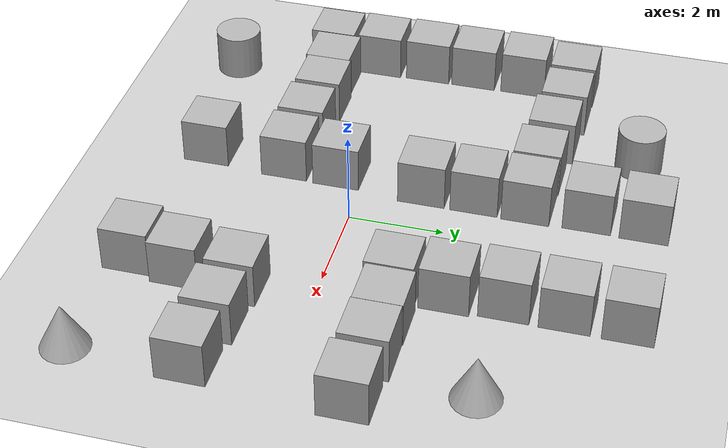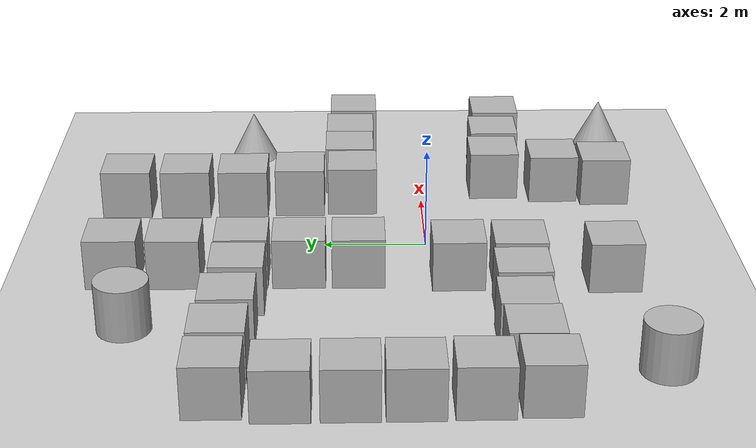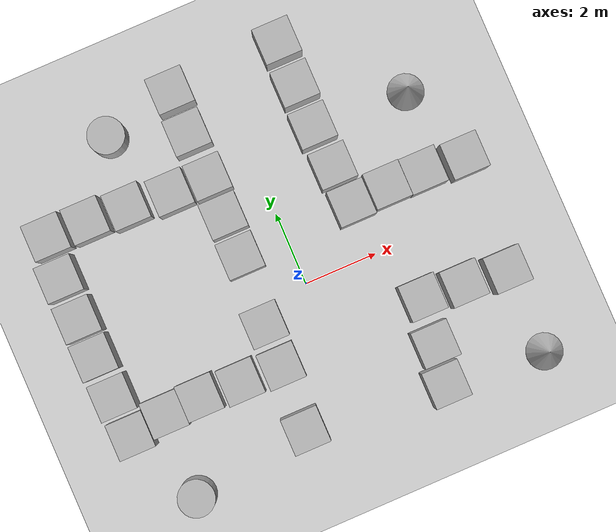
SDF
<sdf version='1.10'>
  <world name='empty'>
    <physics name='1ms' type='ignored'>
      <max_step_size>0.001</max_step_size>
      <real_time_factor>1</real_time_factor>
      <real_time_update_rate>1000</real_time_update_rate>
    </physics>
    <plugin name='gz::sim::systems::Physics' filename='gz-sim-physics-system'/>
    <plugin name='gz::sim::systems::UserCommands' filename='gz-sim-user-commands-system'/>
    <plugin name='gz::sim::systems::SceneBroadcaster' filename='gz-sim-scene-broadcaster-system'/>
    <plugin name='gz::sim::systems::Contact' filename='gz-sim-contact-system'/>
    <gravity>0 0 -9.8000000000000007</gravity>
    <magnetic_field>5.5644999999999998e-06 2.2875799999999999e-05 -4.2388400000000002e-05</magnetic_field>
    <atmosphere type='adiabatic'/>
    <scene>
      <ambient>0.400000006 0.400000006 0.400000006 1</ambient>
      <background>0.699999988 0.699999988 0.699999988 1</background>
      <shadows>true</shadows>
    </scene>
    <model name='ground_plane'>
      <static>true</static>
      <link name='link'>
        <collision name='collision'>
          <geometry>
            <plane>
              <normal>0 0 1</normal>
              <size>100 100</size>
            </plane>
          </geometry>
          <surface>
            <friction>
              <ode/>
            </friction>
            <bounce/>
            <contact/>
          </surface>
        </collision>
        <visual name='visual'>
          <geometry>
            <plane>
              <normal>0 0 1</normal>
              <size>100 100</size>
            </plane>
          </geometry>
          <material>
            <ambient>0.800000012 0.800000012 0.800000012 1</ambient>
            <diffuse>0.800000012 0.800000012 0.800000012 1</diffuse>
            <specular>0.800000012 0.800000012 0.800000012 1</specular>
          </material>
        </visual>
        <pose>0 0 0 0 0 0</pose>
        <inertial>
          <pose>0 0 0 0 0 0</pose>
          <mass>1</mass>
          <inertia>
            <ixx>1</ixx>
            <ixy>0</ixy>
            <ixz>0</ixz>
            <iyy>1</iyy>
            <iyz>0</iyz>
            <izz>1</izz>
          </inertia>
        </inertial>
        <enable_wind>false</enable_wind>
      </link>
      <pose>0 0 0 0 0 0</pose>
      <self_collide>false</self_collide>
    </model>
    <model name='box'>
      <pose>1.8976033940822885 1.4441782919231163 0.49999999990199806 -3.9555274568934306e-22 1.4276356016581111e-21 3.0034508632631953e-22</pose>
      <link name='box_link'>
        <inertial>
          <inertia>
            <ixx>0.16666</ixx>
            <ixy>0</ixy>
            <ixz>0</ixz>
            <iyy>0.16666</iyy>
            <iyz>0</iyz>
            <izz>0.16666</izz>
          </inertia>
          <mass>1</mass>
          <pose>0 0 0 0 0 0</pose>
        </inertial>
        <collision name='box_collision'>
          <geometry>
            <box>
              <size>1 1 1</size>
            </box>
          </geometry>
          <surface>
            <friction>
              <ode/>
            </friction>
            <bounce/>
            <contact/>
          </surface>
        </collision>
        <visual name='box_visual'>
          <geometry>
            <box>
              <size>1 1 1</size>
            </box>
          </geometry>
          <material>
            <ambient>0.300000012 0.300000012 0.300000012 1</ambient>
            <diffuse>0.699999988 0.699999988 0.699999988 1</diffuse>
            <specular>1 1 1 1</specular>
          </material>
        </visual>
        <pose>0 0 0 0 0 0</pose>
        <enable_wind>false</enable_wind>
      </link>
      <static>false</static>
      <self_collide>false</self_collide>
    </model>
    <model name='box_0'>
      <pose>2.9330656087198355 1.4966173517440593 0.49999999990199806 6.2287739151293738e-22 9.3279666454713669e-22 -3.6315533669320137e-22</pose>
      <link name='box_link'>
        <inertial>
          <inertia>
            <ixx>0.16666</ixx>
            <ixy>0</ixy>
            <ixz>0</ixz>
            <iyy>0.16666</iyy>
            <iyz>0</iyz>
            <izz>0.16666</izz>
          </inertia>
          <mass>1</mass>
          <pose>0 0 0 0 0 0</pose>
        </inertial>
        <collision name='box_collision'>
          <geometry>
            <box>
              <size>1 1 1</size>
            </box>
          </geometry>
          <surface>
            <friction>
              <ode/>
            </friction>
            <bounce/>
            <contact/>
          </surface>
        </collision>
        <visual name='box_visual'>
          <geometry>
            <box>
              <size>1 1 1</size>
            </box>
          </geometry>
          <material>
            <ambient>0.300000012 0.300000012 0.300000012 1</ambient>
            <diffuse>0.699999988 0.699999988 0.699999988 1</diffuse>
            <specular>1 1 1 1</specular>
          </material>
        </visual>
        <pose>0 0 0 0 0 0</pose>
        <enable_wind>false</enable_wind>
      </link>
      <static>false</static>
      <self_collide>false</self_collide>
    </model>
    <model name='box_1'>
      <pose>3.9338361708729912 1.4798363411599209 0.49999999990199806 2.0389204011590201e-22 -8.6554125143311113e-22 1.5510299731322384e-22</pose>
      <link name='box_link'>
        <inertial>
          <inertia>
            <ixx>0.16666</ixx>
            <ixy>0</ixy>
            <ixz>0</ixz>
            <iyy>0.16666</iyy>
            <iyz>0</iyz>
            <izz>0.16666</izz>
          </inertia>
          <mass>1</mass>
          <pose>0 0 0 0 0 0</pose>
        </inertial>
        <collision name='box_collision'>
          <geometry>
            <box>
              <size>1 1 1</size>
            </box>
          </geometry>
          <surface>
            <friction>
              <ode/>
            </friction>
            <bounce/>
            <contact/>
          </surface>
        </collision>
        <visual name='box_visual'>
          <geometry>
            <box>
              <size>1 1 1</size>
            </box>
          </geometry>
          <material>
            <ambient>0.300000012 0.300000012 0.300000012 1</ambient>
            <diffuse>0.699999988 0.699999988 0.699999988 1</diffuse>
            <specular>1 1 1 1</specular>
          </material>
        </visual>
        <pose>0 0 0 0 0 0</pose>
        <enable_wind>false</enable_wind>
      </link>
      <static>false</static>
      <self_collide>false</self_collide>
    </model>
    <model name='box_2'>
      <pose>5.0722942099601456 1.4044145805904746 0.49999999990199806 6.2287739151293738e-22 9.3279666454713669e-22 -3.6315533669320137e-22</pose>
      <link name='box_link'>
        <inertial>
          <inertia>
            <ixx>0.16666</ixx>
            <ixy>0</ixy>
            <ixz>0</ixz>
            <iyy>0.16666</iyy>
            <iyz>0</iyz>
            <izz>0.16666</izz>
          </inertia>
          <mass>1</mass>
          <pose>0 0 0 0 0 0</pose>
        </inertial>
        <collision name='box_collision'>
          <geometry>
            <box>
              <size>1 1 1</size>
            </box>
          </geometry>
          <surface>
            <friction>
              <ode/>
            </friction>
            <bounce/>
            <contact/>
          </surface>
        </collision>
        <visual name='box_visual'>
          <geometry>
            <box>
              <size>1 1 1</size>
            </box>
          </geometry>
          <material>
            <ambient>0.300000012 0.300000012 0.300000012 1</ambient>
            <diffuse>0.699999988 0.699999988 0.699999988 1</diffuse>
            <specular>1 1 1 1</specular>
          </material>
        </visual>
        <pose>0 0 0 0 0 0</pose>
        <enable_wind>false</enable_wind>
      </link>
      <static>false</static>
      <self_collide>false</self_collide>
    </model>
    <model name='box_3'>
      <pose>1.8371486937356341 2.5219128706078142 0.49999999990199806 -3.9555274568934306e-22 1.4276356016581111e-21 3.0034508632631953e-22</pose>
      <link name='box_link'>
        <inertial>
          <inertia>
            <ixx>0.16666</ixx>
            <ixy>0</ixy>
            <ixz>0</ixz>
            <iyy>0.16666</iyy>
            <iyz>0</iyz>
            <izz>0.16666</izz>
          </inertia>
          <mass>1</mass>
          <pose>0 0 0 0 0 0</pose>
        </inertial>
        <collision name='box_collision'>
          <geometry>
            <box>
              <size>1 1 1</size>
            </box>
          </geometry>
          <surface>
            <friction>
              <ode/>
            </friction>
            <bounce/>
            <contact/>
          </surface>
        </collision>
        <visual name='box_visual'>
          <geometry>
            <box>
              <size>1 1 1</size>
            </box>
          </geometry>
          <material>
            <ambient>0.300000012 0.300000012 0.300000012 1</ambient>
            <diffuse>0.699999988 0.699999988 0.699999988 1</diffuse>
            <specular>1 1 1 1</specular>
          </material>
        </visual>
        <pose>0 0 0 0 0 0</pose>
        <enable_wind>false</enable_wind>
      </link>
      <static>false</static>
      <self_collide>false</self_collide>
    </model>
    <model name='box_4'>
      <pose>1.7736586005860404 3.6828100143393216 0.49999999990199806 -3.9555274568934306e-22 1.4276356016581111e-21 3.0034508632631953e-22</pose>
      <link name='box_link'>
        <inertial>
          <inertia>
            <ixx>0.16666</ixx>
            <ixy>0</ixy>
            <ixz>0</ixz>
            <iyy>0.16666</iyy>
            <iyz>0</iyz>
            <izz>0.16666</izz>
          </inertia>
          <mass>1</mass>
          <pose>0 0 0 0 0 0</pose>
        </inertial>
        <collision name='box_collision'>
          <geometry>
            <box>
              <size>1 1 1</size>
            </box>
          </geometry>
          <surface>
            <friction>
              <ode/>
            </friction>
            <bounce/>
            <contact/>
          </surface>
        </collision>
        <visual name='box_visual'>
          <geometry>
            <box>
              <size>1 1 1</size>
            </box>
          </geometry>
          <material>
            <ambient>0.300000012 0.300000012 0.300000012 1</ambient>
            <diffuse>0.699999988 0.699999988 0.699999988 1</diffuse>
            <specular>1 1 1 1</specular>
          </material>
        </visual>
        <pose>0 0 0 0 0 0</pose>
        <enable_wind>false</enable_wind>
      </link>
      <static>false</static>
      <self_collide>false</self_collide>
    </model>
    <model name='box_5'>
      <pose>1.7869543388882849 4.8594936091728398 0.49999999990199806 -3.9555274568934306e-22 1.4276356016581111e-21 3.0034508632631953e-22</pose>
      <link name='box_link'>
        <inertial>
          <inertia>
            <ixx>0.16666</ixx>
            <ixy>0</ixy>
            <ixz>0</ixz>
            <iyy>0.16666</iyy>
            <iyz>0</iyz>
            <izz>0.16666</izz>
          </inertia>
          <mass>1</mass>
          <pose>0 0 0 0 0 0</pose>
        </inertial>
        <collision name='box_collision'>
          <geometry>
            <box>
              <size>1 1 1</size>
            </box>
          </geometry>
          <surface>
            <friction>
              <ode/>
            </friction>
            <bounce/>
            <contact/>
          </surface>
        </collision>
        <visual name='box_visual'>
          <geometry>
            <box>
              <size>1 1 1</size>
            </box>
          </geometry>
          <material>
            <ambient>0.300000012 0.300000012 0.300000012 1</ambient>
            <diffuse>0.699999988 0.699999988 0.699999988 1</diffuse>
            <specular>1 1 1 1</specular>
          </material>
        </visual>
        <pose>0 0 0 0 0 0</pose>
        <enable_wind>false</enable_wind>
      </link>
      <static>false</static>
      <self_collide>false</self_collide>
    </model>
    <model name='box_6'>
      <pose>1.7989180642490408 6.069131966669465 0.49999999990199806 6.2287739151293738e-22 9.3279666454713669e-22 -3.6315533669320137e-22</pose>
      <link name='box_link'>
        <inertial>
          <inertia>
            <ixx>0.16666</ixx>
            <ixy>0</ixy>
            <ixz>0</ixz>
            <iyy>0.16666</iyy>
            <iyz>0</iyz>
            <izz>0.16666</izz>
          </inertia>
          <mass>1</mass>
          <pose>0 0 0 0 0 0</pose>
        </inertial>
        <collision name='box_collision'>
          <geometry>
            <box>
              <size>1 1 1</size>
            </box>
          </geometry>
          <surface>
            <friction>
              <ode/>
            </friction>
            <bounce/>
            <contact/>
          </surface>
        </collision>
        <visual name='box_visual'>
          <geometry>
            <box>
              <size>1 1 1</size>
            </box>
          </geometry>
          <material>
            <ambient>0.300000012 0.300000012 0.300000012 1</ambient>
            <diffuse>0.699999988 0.699999988 0.699999988 1</diffuse>
            <specular>1 1 1 1</specular>
          </material>
        </visual>
        <pose>0 0 0 0 0 0</pose>
        <enable_wind>false</enable_wind>
      </link>
      <static>false</static>
      <self_collide>false</self_collide>
    </model>
    <model name='box_7'>
      <pose>-1.2536535784073894 5.9838267235420783 0.49999999990199806 6.2287739151293738e-22 9.3279666454713669e-22 -3.6315533669320137e-22</pose>
      <link name='box_link'>
        <inertial>
          <inertia>
            <ixx>0.16666</ixx>
            <ixy>0</ixy>
            <ixz>0</ixz>
            <iyy>0.16666</iyy>
            <iyz>0</iyz>
            <izz>0.16666</izz>
          </inertia>
          <mass>1</mass>
          <pose>0 0 0 0 0 0</pose>
        </inertial>
        <collision name='box_collision'>
          <geometry>
            <box>
              <size>1 1 1</size>
            </box>
          </geometry>
          <surface>
            <friction>
              <ode/>
            </friction>
            <bounce/>
            <contact/>
          </surface>
        </collision>
        <visual name='box_visual'>
          <geometry>
            <box>
              <size>1 1 1</size>
            </box>
          </geometry>
          <material>
            <ambient>0.300000012 0.300000012 0.300000012 1</ambient>
            <diffuse>0.699999988 0.699999988 0.699999988 1</diffuse>
            <specular>1 1 1 1</specular>
          </material>
        </visual>
        <pose>0 0 0 0 0 0</pose>
        <enable_wind>false</enable_wind>
      </link>
      <static>false</static>
      <self_collide>false</self_collide>
    </model>
    <model name='box_8'>
      <pose>-1.2794380329878723 4.8108748257504743 0.49999999990199806 6.2287739151293738e-22 9.3279666454713669e-22 -3.6315533669320137e-22</pose>
      <link name='box_link'>
        <inertial>
          <inertia>
            <ixx>0.16666</ixx>
            <ixy>0</ixy>
            <ixz>0</ixz>
            <iyy>0.16666</iyy>
            <iyz>0</iyz>
            <izz>0.16666</izz>
          </inertia>
          <mass>1</mass>
          <pose>0 0 0 0 0 0</pose>
        </inertial>
        <collision name='box_collision'>
          <geometry>
            <box>
              <size>1 1 1</size>
            </box>
          </geometry>
          <surface>
            <friction>
              <ode/>
            </friction>
            <bounce/>
            <contact/>
          </surface>
        </collision>
        <visual name='box_visual'>
          <geometry>
            <box>
              <size>1 1 1</size>
            </box>
          </geometry>
          <material>
            <ambient>0.300000012 0.300000012 0.300000012 1</ambient>
            <diffuse>0.699999988 0.699999988 0.699999988 1</diffuse>
            <specular>1 1 1 1</specular>
          </material>
        </visual>
        <pose>0 0 0 0 0 0</pose>
        <enable_wind>false</enable_wind>
      </link>
      <static>false</static>
      <self_collide>false</self_collide>
    </model>
    <model name='box_9'>
      <pose>-1.2461336649249413 3.5442652258018863 0.49999999990199806 2.5448413974852911e-21 9.9777089524688389e-23 -8.7974751158573218e-23</pose>
      <link name='box_link'>
        <inertial>
          <inertia>
            <ixx>0.16666</ixx>
            <ixy>0</ixy>
            <ixz>0</ixz>
            <iyy>0.16666</iyy>
            <iyz>0</iyz>
            <izz>0.16666</izz>
          </inertia>
          <mass>1</mass>
          <pose>0 0 0 0 0 0</pose>
        </inertial>
        <collision name='box_collision'>
          <geometry>
            <box>
              <size>1 1 1</size>
            </box>
          </geometry>
          <surface>
            <friction>
              <ode/>
            </friction>
            <bounce/>
            <contact/>
          </surface>
        </collision>
        <visual name='box_visual'>
          <geometry>
            <box>
              <size>1 1 1</size>
            </box>
          </geometry>
          <material>
            <ambient>0.300000012 0.300000012 0.300000012 1</ambient>
            <diffuse>0.699999988 0.699999988 0.699999988 1</diffuse>
            <specular>1 1 1 1</specular>
          </material>
        </visual>
        <pose>0 0 0 0 0 0</pose>
        <enable_wind>false</enable_wind>
      </link>
      <static>false</static>
      <self_collide>false</self_collide>
    </model>
    <model name='box_10'>
      <pose>-1.2741144112186853 2.4601389477946829 0.49999999990199806 6.2287739151293738e-22 9.3279666454713669e-22 -3.6315533669320137e-22</pose>
      <link name='box_link'>
        <inertial>
          <inertia>
            <ixx>0.16666</ixx>
            <ixy>0</ixy>
            <ixz>0</ixz>
            <iyy>0.16666</iyy>
            <iyz>0</iyz>
            <izz>0.16666</izz>
          </inertia>
          <mass>1</mass>
          <pose>0 0 0 0 0 0</pose>
        </inertial>
        <collision name='box_collision'>
          <geometry>
            <box>
              <size>1 1 1</size>
            </box>
          </geometry>
          <surface>
            <friction>
              <ode/>
            </friction>
            <bounce/>
            <contact/>
          </surface>
        </collision>
        <visual name='box_visual'>
          <geometry>
            <box>
              <size>1 1 1</size>
            </box>
          </geometry>
          <material>
            <ambient>0.300000012 0.300000012 0.300000012 1</ambient>
            <diffuse>0.699999988 0.699999988 0.699999988 1</diffuse>
            <specular>1 1 1 1</specular>
          </material>
        </visual>
        <pose>0 0 0 0 0 0</pose>
        <enable_wind>false</enable_wind>
      </link>
      <static>false</static>
      <self_collide>false</self_collide>
    </model>
    <model name='box_11'>
      <pose>-1.2818536223010142 1.3389198062367247 0.49999999990199806 6.2287739151293738e-22 9.3279666454713669e-22 -3.6315533669320137e-22</pose>
      <link name='box_link'>
        <inertial>
          <inertia>
            <ixx>0.16666</ixx>
            <ixy>0</ixy>
            <ixz>0</ixz>
            <iyy>0.16666</iyy>
            <iyz>0</iyz>
            <izz>0.16666</izz>
          </inertia>
          <mass>1</mass>
          <pose>0 0 0 0 0 0</pose>
        </inertial>
        <collision name='box_collision'>
          <geometry>
            <box>
              <size>1 1 1</size>
            </box>
          </geometry>
          <surface>
            <friction>
              <ode/>
            </friction>
            <bounce/>
            <contact/>
          </surface>
        </collision>
        <visual name='box_visual'>
          <geometry>
            <box>
              <size>1 1 1</size>
            </box>
          </geometry>
          <material>
            <ambient>0.300000012 0.300000012 0.300000012 1</ambient>
            <diffuse>0.699999988 0.699999988 0.699999988 1</diffuse>
            <specular>1 1 1 1</specular>
          </material>
        </visual>
        <pose>0 0 0 0 0 0</pose>
        <enable_wind>false</enable_wind>
      </link>
      <static>false</static>
      <self_collide>false</self_collide>
    </model>
    <model name='box_12'>
      <pose>-1.4182247176559106 -0.54341574817418281 0.49999999990199806 6.2287739151293738e-22 9.3279666454713669e-22 -3.6315533669320137e-22</pose>
      <link name='box_link'>
        <inertial>
          <inertia>
            <ixx>0.16666</ixx>
            <ixy>0</ixy>
            <ixz>0</ixz>
            <iyy>0.16666</iyy>
            <iyz>0</iyz>
            <izz>0.16666</izz>
          </inertia>
          <mass>1</mass>
          <pose>0 0 0 0 0 0</pose>
        </inertial>
        <collision name='box_collision'>
          <geometry>
            <box>
              <size>1 1 1</size>
            </box>
          </geometry>
          <surface>
            <friction>
              <ode/>
            </friction>
            <bounce/>
            <contact/>
          </surface>
        </collision>
        <visual name='box_visual'>
          <geometry>
            <box>
              <size>1 1 1</size>
            </box>
          </geometry>
          <material>
            <ambient>0.300000012 0.300000012 0.300000012 1</ambient>
            <diffuse>0.699999988 0.699999988 0.699999988 1</diffuse>
            <specular>1 1 1 1</specular>
          </material>
        </visual>
        <pose>0 0 0 0 0 0</pose>
        <enable_wind>false</enable_wind>
      </link>
      <static>false</static>
      <self_collide>false</self_collide>
    </model>
    <model name='box_13'>
      <pose>-1.4434196926364309 -1.6938511866096397 0.49999999990199806 6.2287739151293738e-22 9.3279666454713669e-22 -3.6315533669320137e-22</pose>
      <link name='box_link'>
        <inertial>
          <inertia>
            <ixx>0.16666</ixx>
            <ixy>0</ixy>
            <ixz>0</ixz>
            <iyy>0.16666</iyy>
            <iyz>0</iyz>
            <izz>0.16666</izz>
          </inertia>
          <mass>1</mass>
          <pose>0 0 0 0 0 0</pose>
        </inertial>
        <collision name='box_collision'>
          <geometry>
            <box>
              <size>1 1 1</size>
            </box>
          </geometry>
          <surface>
            <friction>
              <ode/>
            </friction>
            <bounce/>
            <contact/>
          </surface>
        </collision>
        <visual name='box_visual'>
          <geometry>
            <box>
              <size>1 1 1</size>
            </box>
          </geometry>
          <material>
            <ambient>0.300000012 0.300000012 0.300000012 1</ambient>
            <diffuse>0.699999988 0.699999988 0.699999988 1</diffuse>
            <specular>1 1 1 1</specular>
          </material>
        </visual>
        <pose>0 0 0 0 0 0</pose>
        <enable_wind>false</enable_wind>
      </link>
      <static>false</static>
      <self_collide>false</self_collide>
    </model>
    <model name='box_14'>
      <pose>-1.5251292809184553 -3.4693139978885039 0.49999999990199806 6.2287739151293738e-22 9.3279666454713669e-22 -3.6315533669320137e-22</pose>
      <link name='box_link'>
        <inertial>
          <inertia>
            <ixx>0.16666</ixx>
            <ixy>0</ixy>
            <ixz>0</ixz>
            <iyy>0.16666</iyy>
            <iyz>0</iyz>
            <izz>0.16666</izz>
          </inertia>
          <mass>1</mass>
          <pose>0 0 0 0 0 0</pose>
        </inertial>
        <collision name='box_collision'>
          <geometry>
            <box>
              <size>1 1 1</size>
            </box>
          </geometry>
          <surface>
            <friction>
              <ode/>
            </friction>
            <bounce/>
            <contact/>
          </surface>
        </collision>
        <visual name='box_visual'>
          <geometry>
            <box>
              <size>1 1 1</size>
            </box>
          </geometry>
          <material>
            <ambient>0.300000012 0.300000012 0.300000012 1</ambient>
            <diffuse>0.699999988 0.699999988 0.699999988 1</diffuse>
            <specular>1 1 1 1</specular>
          </material>
        </visual>
        <pose>0 0 0 0 0 0</pose>
        <enable_wind>false</enable_wind>
      </link>
      <static>false</static>
      <self_collide>false</self_collide>
    </model>
    <model name='box_15'>
      <pose>4.9102334998838728 -1.7312260045628927 0.49999999990199806 6.2287739151293738e-22 9.3279666454713669e-22 -3.6315533669320137e-22</pose>
      <link name='box_link'>
        <inertial>
          <inertia>
            <ixx>0.16666</ixx>
            <ixy>0</ixy>
            <ixz>0</ixz>
            <iyy>0.16666</iyy>
            <iyz>0</iyz>
            <izz>0.16666</izz>
          </inertia>
          <mass>1</mass>
          <pose>0 0 0 0 0 0</pose>
        </inertial>
        <collision name='box_collision'>
          <geometry>
            <box>
              <size>1 1 1</size>
            </box>
          </geometry>
          <surface>
            <friction>
              <ode/>
            </friction>
            <bounce/>
            <contact/>
          </surface>
        </collision>
        <visual name='box_visual'>
          <geometry>
            <box>
              <size>1 1 1</size>
            </box>
          </geometry>
          <material>
            <ambient>0.300000012 0.300000012 0.300000012 1</ambient>
            <diffuse>0.699999988 0.699999988 0.699999988 1</diffuse>
            <specular>1 1 1 1</specular>
          </material>
        </visual>
        <pose>0 0 0 0 0 0</pose>
        <enable_wind>false</enable_wind>
      </link>
      <static>false</static>
      <self_collide>false</self_collide>
    </model>
    <model name='box_16'>
      <pose>3.7371681686176634 -1.6152218957688573 0.49999999990199806 6.2287739151293738e-22 9.3279666454713669e-22 -3.6315533669320137e-22</pose>
      <link name='box_link'>
        <inertial>
          <inertia>
            <ixx>0.16666</ixx>
            <ixy>0</ixy>
            <ixz>0</ixz>
            <iyy>0.16666</iyy>
            <iyz>0</iyz>
            <izz>0.16666</izz>
          </inertia>
          <mass>1</mass>
          <pose>0 0 0 0 0 0</pose>
        </inertial>
        <collision name='box_collision'>
          <geometry>
            <box>
              <size>1 1 1</size>
            </box>
          </geometry>
          <surface>
            <friction>
              <ode/>
            </friction>
            <bounce/>
            <contact/>
          </surface>
        </collision>
        <visual name='box_visual'>
          <geometry>
            <box>
              <size>1 1 1</size>
            </box>
          </geometry>
          <material>
            <ambient>0.300000012 0.300000012 0.300000012 1</ambient>
            <diffuse>0.699999988 0.699999988 0.699999988 1</diffuse>
            <specular>1 1 1 1</specular>
          </material>
        </visual>
        <pose>0 0 0 0 0 0</pose>
        <enable_wind>false</enable_wind>
      </link>
      <static>false</static>
      <self_collide>false</self_collide>
    </model>
    <model name='box_17'>
      <pose>2.6090391180746888 -1.5281271918476049 0.49999999990199806 6.2287739151293738e-22 9.3279666454713669e-22 -3.6315533669320137e-22</pose>
      <link name='box_link'>
        <inertial>
          <inertia>
            <ixx>0.16666</ixx>
            <ixy>0</ixy>
            <ixz>0</ixz>
            <iyy>0.16666</iyy>
            <iyz>0</iyz>
            <izz>0.16666</izz>
          </inertia>
          <mass>1</mass>
          <pose>0 0 0 0 0 0</pose>
        </inertial>
        <collision name='box_collision'>
          <geometry>
            <box>
              <size>1 1 1</size>
            </box>
          </geometry>
          <surface>
            <friction>
              <ode/>
            </friction>
            <bounce/>
            <contact/>
          </surface>
        </collision>
        <visual name='box_visual'>
          <geometry>
            <box>
              <size>1 1 1</size>
            </box>
          </geometry>
          <material>
            <ambient>0.300000012 0.300000012 0.300000012 1</ambient>
            <diffuse>0.699999988 0.699999988 0.699999988 1</diffuse>
            <specular>1 1 1 1</specular>
          </material>
        </visual>
        <pose>0 0 0 0 0 0</pose>
        <enable_wind>false</enable_wind>
      </link>
      <static>false</static>
      <self_collide>false</self_collide>
    </model>
    <model name='box_18'>
      <pose>2.4335539992430442 -2.7602654445857988 0.49999999990199806 6.2287739151293738e-22 9.3279666454713669e-22 -3.6315533669320137e-22</pose>
      <link name='box_link'>
        <inertial>
          <inertia>
            <ixx>0.16666</ixx>
            <ixy>0</ixy>
            <ixz>0</ixz>
            <iyy>0.16666</iyy>
            <iyz>0</iyz>
            <izz>0.16666</izz>
          </inertia>
          <mass>1</mass>
          <pose>0 0 0 0 0 0</pose>
        </inertial>
        <collision name='box_collision'>
          <geometry>
            <box>
              <size>1 1 1</size>
            </box>
          </geometry>
          <surface>
            <friction>
              <ode/>
            </friction>
            <bounce/>
            <contact/>
          </surface>
        </collision>
        <visual name='box_visual'>
          <geometry>
            <box>
              <size>1 1 1</size>
            </box>
          </geometry>
          <material>
            <ambient>0.300000012 0.300000012 0.300000012 1</ambient>
            <diffuse>0.699999988 0.699999988 0.699999988 1</diffuse>
            <specular>1 1 1 1</specular>
          </material>
        </visual>
        <pose>0 0 0 0 0 0</pose>
        <enable_wind>false</enable_wind>
      </link>
      <static>false</static>
      <self_collide>false</self_collide>
    </model>
    <model name='box_19'>
      <pose>2.2784153245886669 -3.8210834969553789 0.49999999990199806 6.2287739151293738e-22 9.3279666454713669e-22 -3.6315533669320137e-22</pose>
      <link name='box_link'>
        <inertial>
          <inertia>
            <ixx>0.16666</ixx>
            <ixy>0</ixy>
            <ixz>0</ixz>
            <iyy>0.16666</iyy>
            <iyz>0</iyz>
            <izz>0.16666</izz>
          </inertia>
          <mass>1</mass>
          <pose>0 0 0 0 0 0</pose>
        </inertial>
        <collision name='box_collision'>
          <geometry>
            <box>
              <size>1 1 1</size>
            </box>
          </geometry>
          <surface>
            <friction>
              <ode/>
            </friction>
            <bounce/>
            <contact/>
          </surface>
        </collision>
        <visual name='box_visual'>
          <geometry>
            <box>
              <size>1 1 1</size>
            </box>
          </geometry>
          <material>
            <ambient>0.300000012 0.300000012 0.300000012 1</ambient>
            <diffuse>0.699999988 0.699999988 0.699999988 1</diffuse>
            <specular>1 1 1 1</specular>
          </material>
        </visual>
        <pose>0 0 0 0 0 0</pose>
        <enable_wind>false</enable_wind>
      </link>
      <static>false</static>
      <self_collide>false</self_collide>
    </model>
    <model name='box_20'>
      <pose>-2.3009902970791898 3.5630447318928007 0.49999999990199806 1.380058407524736e-21 -4.0566468528448383e-21 6.0579372938736199e-22</pose>
      <link name='box_link'>
        <inertial>
          <inertia>
            <ixx>0.16666</ixx>
            <ixy>0</ixy>
            <ixz>0</ixz>
            <iyy>0.16666</iyy>
            <iyz>0</iyz>
            <izz>0.16666</izz>
          </inertia>
          <mass>1</mass>
          <pose>0 0 0 0 0 0</pose>
        </inertial>
        <collision name='box_collision'>
          <geometry>
            <box>
              <size>1 1 1</size>
            </box>
          </geometry>
          <surface>
            <friction>
              <ode/>
            </friction>
            <bounce/>
            <contact/>
          </surface>
        </collision>
        <visual name='box_visual'>
          <geometry>
            <box>
              <size>1 1 1</size>
            </box>
          </geometry>
          <material>
            <ambient>0.300000012 0.300000012 0.300000012 1</ambient>
            <diffuse>0.699999988 0.699999988 0.699999988 1</diffuse>
            <specular>1 1 1 1</specular>
          </material>
        </visual>
        <pose>0 0 0 0 0 0</pose>
        <enable_wind>false</enable_wind>
      </link>
      <static>false</static>
      <self_collide>false</self_collide>
    </model>
    <model name='box_21'>
      <pose>-3.4790073258578067 3.6730573593564011 0.49999999990199806 1.380058407524736e-21 -4.0566468528448383e-21 6.0579372938736199e-22</pose>
      <link name='box_link'>
        <inertial>
          <inertia>
            <ixx>0.16666</ixx>
            <ixy>0</ixy>
            <ixz>0</ixz>
            <iyy>0.16666</iyy>
            <iyz>0</iyz>
            <izz>0.16666</izz>
          </inertia>
          <mass>1</mass>
          <pose>0 0 0 0 0 0</pose>
        </inertial>
        <collision name='box_collision'>
          <geometry>
            <box>
              <size>1 1 1</size>
            </box>
          </geometry>
          <surface>
            <friction>
              <ode/>
            </friction>
            <bounce/>
            <contact/>
          </surface>
        </collision>
        <visual name='box_visual'>
          <geometry>
            <box>
              <size>1 1 1</size>
            </box>
          </geometry>
          <material>
            <ambient>0.300000012 0.300000012 0.300000012 1</ambient>
            <diffuse>0.699999988 0.699999988 0.699999988 1</diffuse>
            <specular>1 1 1 1</specular>
          </material>
        </visual>
        <pose>0 0 0 0 0 0</pose>
        <enable_wind>false</enable_wind>
      </link>
      <static>false</static>
      <self_collide>false</self_collide>
    </model>
    <model name='box_22'>
      <pose>-4.590193154485096 3.7547899004989542 0.49999999990199806 6.2287739151293738e-22 9.3279666454713669e-22 -3.6315533669320137e-22</pose>
      <link name='box_link'>
        <inertial>
          <inertia>
            <ixx>0.16666</ixx>
            <ixy>0</ixy>
            <ixz>0</ixz>
            <iyy>0.16666</iyy>
            <iyz>0</iyz>
            <izz>0.16666</izz>
          </inertia>
          <mass>1</mass>
          <pose>0 0 0 0 0 0</pose>
        </inertial>
        <collision name='box_collision'>
          <geometry>
            <box>
              <size>1 1 1</size>
            </box>
          </geometry>
          <surface>
            <friction>
              <ode/>
            </friction>
            <bounce/>
            <contact/>
          </surface>
        </collision>
        <visual name='box_visual'>
          <geometry>
            <box>
              <size>1 1 1</size>
            </box>
          </geometry>
          <material>
            <ambient>0.300000012 0.300000012 0.300000012 1</ambient>
            <diffuse>0.699999988 0.699999988 0.699999988 1</diffuse>
            <specular>1 1 1 1</specular>
          </material>
        </visual>
        <pose>0 0 0 0 0 0</pose>
        <enable_wind>false</enable_wind>
      </link>
      <static>false</static>
      <self_collide>false</self_collide>
    </model>
    <model name='box_23'>
      <pose>-5.6859965213021217 3.7705809043129137 0.49999999990199806 1.380058407524736e-21 -4.0566468528448383e-21 6.0579372938736199e-22</pose>
      <link name='box_link'>
        <inertial>
          <inertia>
            <ixx>0.16666</ixx>
            <ixy>0</ixy>
            <ixz>0</ixz>
            <iyy>0.16666</iyy>
            <iyz>0</iyz>
            <izz>0.16666</izz>
          </inertia>
          <mass>1</mass>
          <pose>0 0 0 0 0 0</pose>
        </inertial>
        <collision name='box_collision'>
          <geometry>
            <box>
              <size>1 1 1</size>
            </box>
          </geometry>
          <surface>
            <friction>
              <ode/>
            </friction>
            <bounce/>
            <contact/>
          </surface>
        </collision>
        <visual name='box_visual'>
          <geometry>
            <box>
              <size>1 1 1</size>
            </box>
          </geometry>
          <material>
            <ambient>0.300000012 0.300000012 0.300000012 1</ambient>
            <diffuse>0.699999988 0.699999988 0.699999988 1</diffuse>
            <specular>1 1 1 1</specular>
          </material>
        </visual>
        <pose>0 0 0 0 0 0</pose>
        <enable_wind>false</enable_wind>
      </link>
      <static>false</static>
      <self_collide>false</self_collide>
    </model>
    <model name='box_24'>
      <pose>-5.810488531854956 2.6443341348872211 0.49999999990199806 6.2287739151293738e-22 9.3279666454713669e-22 -3.6315533669320137e-22</pose>
      <link name='box_link'>
        <inertial>
          <inertia>
            <ixx>0.16666</ixx>
            <ixy>0</ixy>
            <ixz>0</ixz>
            <iyy>0.16666</iyy>
            <iyz>0</iyz>
            <izz>0.16666</izz>
          </inertia>
          <mass>1</mass>
          <pose>0 0 0 0 0 0</pose>
        </inertial>
        <collision name='box_collision'>
          <geometry>
            <box>
              <size>1 1 1</size>
            </box>
          </geometry>
          <surface>
            <friction>
              <ode/>
            </friction>
            <bounce/>
            <contact/>
          </surface>
        </collision>
        <visual name='box_visual'>
          <geometry>
            <box>
              <size>1 1 1</size>
            </box>
          </geometry>
          <material>
            <ambient>0.300000012 0.300000012 0.300000012 1</ambient>
            <diffuse>0.699999988 0.699999988 0.699999988 1</diffuse>
            <specular>1 1 1 1</specular>
          </material>
        </visual>
        <pose>0 0 0 0 0 0</pose>
        <enable_wind>false</enable_wind>
      </link>
      <static>false</static>
      <self_collide>false</self_collide>
    </model>
    <model name='box_25'>
      <pose>-5.7956996223373096 1.4981490155578203 0.49999999990199806 6.2287739151293738e-22 9.3279666454713669e-22 -3.6315533669320137e-22</pose>
      <link name='box_link'>
        <inertial>
          <inertia>
            <ixx>0.16666</ixx>
            <ixy>0</ixy>
            <ixz>0</ixz>
            <iyy>0.16666</iyy>
            <iyz>0</iyz>
            <izz>0.16666</izz>
          </inertia>
          <mass>1</mass>
          <pose>0 0 0 0 0 0</pose>
        </inertial>
        <collision name='box_collision'>
          <geometry>
            <box>
              <size>1 1 1</size>
            </box>
          </geometry>
          <surface>
            <friction>
              <ode/>
            </friction>
            <bounce/>
            <contact/>
          </surface>
        </collision>
        <visual name='box_visual'>
          <geometry>
            <box>
              <size>1 1 1</size>
            </box>
          </geometry>
          <material>
            <ambient>0.300000012 0.300000012 0.300000012 1</ambient>
            <diffuse>0.699999988 0.699999988 0.699999988 1</diffuse>
            <specular>1 1 1 1</specular>
          </material>
        </visual>
        <pose>0 0 0 0 0 0</pose>
        <enable_wind>false</enable_wind>
      </link>
      <static>false</static>
      <self_collide>false</self_collide>
    </model>
    <model name='box_26'>
      <pose>-5.787499748918254 0.42744531927282692 0.49999999990199806 6.2287739151293738e-22 9.3279666454713669e-22 -3.6315533669320137e-22</pose>
      <link name='box_link'>
        <inertial>
          <inertia>
            <ixx>0.16666</ixx>
            <ixy>0</ixy>
            <ixz>0</ixz>
            <iyy>0.16666</iyy>
            <iyz>0</iyz>
            <izz>0.16666</izz>
          </inertia>
          <mass>1</mass>
          <pose>0 0 0 0 0 0</pose>
        </inertial>
        <collision name='box_collision'>
          <geometry>
            <box>
              <size>1 1 1</size>
            </box>
          </geometry>
          <surface>
            <friction>
              <ode/>
            </friction>
            <bounce/>
            <contact/>
          </surface>
        </collision>
        <visual name='box_visual'>
          <geometry>
            <box>
              <size>1 1 1</size>
            </box>
          </geometry>
          <material>
            <ambient>0.300000012 0.300000012 0.300000012 1</ambient>
            <diffuse>0.699999988 0.699999988 0.699999988 1</diffuse>
            <specular>1 1 1 1</specular>
          </material>
        </visual>
        <pose>0 0 0 0 0 0</pose>
        <enable_wind>false</enable_wind>
      </link>
      <static>false</static>
      <self_collide>false</self_collide>
    </model>
    <model name='box_27'>
      <pose>-5.7575821835170595 -0.70589538060343004 0.49999999990199806 6.2287739151293738e-22 9.3279666454713669e-22 -3.6315533669320137e-22</pose>
      <link name='box_link'>
        <inertial>
          <inertia>
            <ixx>0.16666</ixx>
            <ixy>0</ixy>
            <ixz>0</ixz>
            <iyy>0.16666</iyy>
            <iyz>0</iyz>
            <izz>0.16666</izz>
          </inertia>
          <mass>1</mass>
          <pose>0 0 0 0 0 0</pose>
        </inertial>
        <collision name='box_collision'>
          <geometry>
            <box>
              <size>1 1 1</size>
            </box>
          </geometry>
          <surface>
            <friction>
              <ode/>
            </friction>
            <bounce/>
            <contact/>
          </surface>
        </collision>
        <visual name='box_visual'>
          <geometry>
            <box>
              <size>1 1 1</size>
            </box>
          </geometry>
          <material>
            <ambient>0.300000012 0.300000012 0.300000012 1</ambient>
            <diffuse>0.699999988 0.699999988 0.699999988 1</diffuse>
            <specular>1 1 1 1</specular>
          </material>
        </visual>
        <pose>0 0 0 0 0 0</pose>
        <enable_wind>false</enable_wind>
      </link>
      <static>false</static>
      <self_collide>false</self_collide>
    </model>
    <model name='box_28'>
      <pose>-5.7108034523362976 -1.7986843639776033 0.49999999990199806 6.2287739151293738e-22 9.3279666454713669e-22 -3.6315533669320137e-22</pose>
      <link name='box_link'>
        <inertial>
          <inertia>
            <ixx>0.16666</ixx>
            <ixy>0</ixy>
            <ixz>0</ixz>
            <iyy>0.16666</iyy>
            <iyz>0</iyz>
            <izz>0.16666</izz>
          </inertia>
          <mass>1</mass>
          <pose>0 0 0 0 0 0</pose>
        </inertial>
        <collision name='box_collision'>
          <geometry>
            <box>
              <size>1 1 1</size>
            </box>
          </geometry>
          <surface>
            <friction>
              <ode/>
            </friction>
            <bounce/>
            <contact/>
          </surface>
        </collision>
        <visual name='box_visual'>
          <geometry>
            <box>
              <size>1 1 1</size>
            </box>
          </geometry>
          <material>
            <ambient>0.300000012 0.300000012 0.300000012 1</ambient>
            <diffuse>0.699999988 0.699999988 0.699999988 1</diffuse>
            <specular>1 1 1 1</specular>
          </material>
        </visual>
        <pose>0 0 0 0 0 0</pose>
        <enable_wind>false</enable_wind>
      </link>
      <static>false</static>
      <self_collide>false</self_collide>
    </model>
    <model name='box_29'>
      <pose>-2.5717191775555319 -1.6481154411120342 0.49999999990199806 6.2287739151293738e-22 9.3279666454713669e-22 -3.6315533669320137e-22</pose>
      <link name='box_link'>
        <inertial>
          <inertia>
            <ixx>0.16666</ixx>
            <ixy>0</ixy>
            <ixz>0</ixz>
            <iyy>0.16666</iyy>
            <iyz>0</iyz>
            <izz>0.16666</izz>
          </inertia>
          <mass>1</mass>
          <pose>0 0 0 0 0 0</pose>
        </inertial>
        <collision name='box_collision'>
          <geometry>
            <box>
              <size>1 1 1</size>
            </box>
          </geometry>
          <surface>
            <friction>
              <ode/>
            </friction>
            <bounce/>
            <contact/>
          </surface>
        </collision>
        <visual name='box_visual'>
          <geometry>
            <box>
              <size>1 1 1</size>
            </box>
          </geometry>
          <material>
            <ambient>0.300000012 0.300000012 0.300000012 1</ambient>
            <diffuse>0.699999988 0.699999988 0.699999988 1</diffuse>
            <specular>1 1 1 1</specular>
          </material>
        </visual>
        <pose>0 0 0 0 0 0</pose>
        <enable_wind>false</enable_wind>
      </link>
      <static>false</static>
      <self_collide>false</self_collide>
    </model>
    <model name='box_30'>
      <pose>-3.6948420744369401 -1.5959369277708089 0.49999999019955688 -7.2036397474224806e-13 1.9599098811566735e-08 1.090904978711266e-08</pose>
      <link name='box_link'>
        <inertial>
          <inertia>
            <ixx>0.16666</ixx>
            <ixy>0</ixy>
            <ixz>0</ixz>
            <iyy>0.16666</iyy>
            <iyz>0</iyz>
            <izz>0.16666</izz>
          </inertia>
          <mass>1</mass>
          <pose>0 0 0 0 0 0</pose>
        </inertial>
        <collision name='box_collision'>
          <geometry>
            <box>
              <size>1 1 1</size>
            </box>
          </geometry>
          <surface>
            <friction>
              <ode/>
            </friction>
            <bounce/>
            <contact/>
          </surface>
        </collision>
        <visual name='box_visual'>
          <geometry>
            <box>
              <size>1 1 1</size>
            </box>
          </geometry>
          <material>
            <ambient>0.300000012 0.300000012 0.300000012 1</ambient>
            <diffuse>0.699999988 0.699999988 0.699999988 1</diffuse>
            <specular>1 1 1 1</specular>
          </material>
        </visual>
        <pose>0 0 0 0 0 0</pose>
        <enable_wind>false</enable_wind>
      </link>
      <static>false</static>
      <self_collide>false</self_collide>
    </model>
    <model name='box_31'>
      <pose>-4.6938351344509339 -1.6386634776242124 0.49999999019739416 1.2618287489931297e-12 -1.9578870768159765e-08 -3.9913910192558994e-07</pose>
      <link name='box_link'>
        <inertial>
          <inertia>
            <ixx>0.16666</ixx>
            <ixy>0</ixy>
            <ixz>0</ixz>
            <iyy>0.16666</iyy>
            <iyz>0</iyz>
            <izz>0.16666</izz>
          </inertia>
          <mass>1</mass>
          <pose>0 0 0 0 0 0</pose>
        </inertial>
        <collision name='box_collision'>
          <geometry>
            <box>
              <size>1 1 1</size>
            </box>
          </geometry>
          <surface>
            <friction>
              <ode/>
            </friction>
            <bounce/>
            <contact/>
          </surface>
        </collision>
        <visual name='box_visual'>
          <geometry>
            <box>
              <size>1 1 1</size>
            </box>
          </geometry>
          <material>
            <ambient>0.300000012 0.300000012 0.300000012 1</ambient>
            <diffuse>0.699999988 0.699999988 0.699999988 1</diffuse>
            <specular>1 1 1 1</specular>
          </material>
        </visual>
        <pose>0 0 0 0 0 0</pose>
        <enable_wind>false</enable_wind>
      </link>
      <static>false</static>
      <self_collide>false</self_collide>
    </model>
    <model name='cone'>
      <pose>4.4364831570683281 3.6115270140771969 0.49999999993296756 5.2549912787881527e-17 -7.7132841033839185e-10 -2.394301907914939e-23</pose>
      <link name='cone_link'>
        <inertial>
          <inertia>
            <ixx>0.074999999999999997</ixx>
            <ixy>0</ixy>
            <ixz>0</ixz>
            <iyy>0.074999999999999997</iyy>
            <iyz>0</iyz>
            <izz>0.074999999999999997</izz>
          </inertia>
          <mass>1</mass>
          <pose>0 0 0 0 0 0</pose>
        </inertial>
        <collision name='cone_collision'>
          <geometry>
            <cone>
              <radius>0.5</radius>
              <length>1</length>
            </cone>
          </geometry>
          <surface>
            <friction>
              <ode/>
            </friction>
            <bounce/>
            <contact/>
          </surface>
        </collision>
        <visual name='cone_visual'>
          <geometry>
            <cone>
              <radius>0.5</radius>
              <length>1</length>
            </cone>
          </geometry>
          <material>
            <ambient>0.300000012 0.300000012 0.300000012 1</ambient>
            <diffuse>0.699999988 0.699999988 0.699999988 1</diffuse>
            <specular>1 1 1 1</specular>
          </material>
        </visual>
        <pose>0 0 0 0 0 0</pose>
        <enable_wind>false</enable_wind>
      </link>
      <static>false</static>
      <self_collide>false</self_collide>
    </model>
    <model name='cone_0'>
      <pose>5.0505138333320518 -4.1283791262504748 0.49999999993296756 5.2551375645788325e-17 -7.7132841038021451e-10 2.5069439130256327e-23</pose>
      <link name='cone_link'>
        <inertial>
          <inertia>
            <ixx>0.074999999999999997</ixx>
            <ixy>0</ixy>
            <ixz>0</ixz>
            <iyy>0.074999999999999997</iyy>
            <iyz>0</iyz>
            <izz>0.074999999999999997</izz>
          </inertia>
          <mass>1</mass>
          <pose>0 0 0 0 0 0</pose>
        </inertial>
        <collision name='cone_collision'>
          <geometry>
            <cone>
              <radius>0.5</radius>
              <length>1</length>
            </cone>
          </geometry>
          <surface>
            <friction>
              <ode/>
            </friction>
            <bounce/>
            <contact/>
          </surface>
        </collision>
        <visual name='cone_visual'>
          <geometry>
            <cone>
              <radius>0.5</radius>
              <length>1</length>
            </cone>
          </geometry>
          <material>
            <ambient>0.300000012 0.300000012 0.300000012 1</ambient>
            <diffuse>0.699999988 0.699999988 0.699999988 1</diffuse>
            <specular>1 1 1 1</specular>
          </material>
        </visual>
        <pose>0 0 0 0 0 0</pose>
        <enable_wind>false</enable_wind>
      </link>
      <static>false</static>
      <self_collide>false</self_collide>
    </model>
    <model name='cylinder'>
      <pose>-3.2282136410247211 5.5585243504644986 0.49999942638036005 2.1501625859592343e-19 -1.6457466752046076e-19 1.9398403791193008e-20</pose>
      <link name='cylinder_link'>
        <inertial>
          <inertia>
            <ixx>0.14580000000000001</ixx>
            <ixy>0</ixy>
            <ixz>0</ixz>
            <iyy>0.14580000000000001</iyy>
            <iyz>0</iyz>
            <izz>0.125</izz>
          </inertia>
          <mass>1</mass>
          <pose>0 0 0 0 0 0</pose>
        </inertial>
        <collision name='cylinder_collision'>
          <geometry>
            <cylinder>
              <radius>0.5</radius>
              <length>1</length>
            </cylinder>
          </geometry>
          <surface>
            <friction>
              <ode/>
            </friction>
            <bounce/>
            <contact/>
          </surface>
        </collision>
        <visual name='cylinder_visual'>
          <geometry>
            <cylinder>
              <radius>0.5</radius>
              <length>1</length>
            </cylinder>
          </geometry>
          <material>
            <ambient>0.300000012 0.300000012 0.300000012 1</ambient>
            <diffuse>0.699999988 0.699999988 0.699999988 1</diffuse>
            <specular>1 1 1 1</specular>
          </material>
        </visual>
        <pose>0 0 0 0 0 0</pose>
        <enable_wind>false</enable_wind>
      </link>
      <static>false</static>
      <self_collide>false</self_collide>
    </model>
    <model name='cylinder_0'>
      <pose>-4.7873467607442493 -3.9432159026628408 0.49999942638036005 -7.0429174043434533e-20 -1.2461928827284617e-19 2.3268121808183739e-20</pose>
      <link name='cylinder_link'>
        <inertial>
          <inertia>
            <ixx>0.14580000000000001</ixx>
            <ixy>0</ixy>
            <ixz>0</ixz>
            <iyy>0.14580000000000001</iyy>
            <iyz>0</iyz>
            <izz>0.125</izz>
          </inertia>
          <mass>1</mass>
          <pose>0 0 0 0 0 0</pose>
        </inertial>
        <collision name='cylinder_collision'>
          <geometry>
            <cylinder>
              <radius>0.5</radius>
              <length>1</length>
            </cylinder>
          </geometry>
          <surface>
            <friction>
              <ode/>
            </friction>
            <bounce/>
            <contact/>
          </surface>
        </collision>
        <visual name='cylinder_visual'>
          <geometry>
            <cylinder>
              <radius>0.5</radius>
              <length>1</length>
            </cylinder>
          </geometry>
          <material>
            <ambient>0.300000012 0.300000012 0.300000012 1</ambient>
            <diffuse>0.699999988 0.699999988 0.699999988 1</diffuse>
            <specular>1 1 1 1</specular>
          </material>
        </visual>
        <pose>0 0 0 0 0 0</pose>
        <enable_wind>false</enable_wind>
      </link>
      <static>false</static>
      <self_collide>false</self_collide>
    </model>
    <light name='sun' type='directional'>
      <pose>0 0 10 0 0 0</pose>
      <cast_shadows>true</cast_shadows>
      <intensity>1</intensity>
      <direction>-0.5 0.10000000000000001 -0.90000000000000002</direction>
      <diffuse>0.800000012 0.800000012 0.800000012 1</diffuse>
      <specular>0.200000003 0.200000003 0.200000003 1</specular>
      <attenuation>
        <range>1000</range>
        <linear>0.01</linear>
        <constant>0.90000000000000002</constant>
        <quadratic>0.001</quadratic>
      </attenuation>
      <spot>
        <inner_angle>0</inner_angle>
        <outer_angle>0</outer_angle>
        <falloff>0</falloff>
      </spot>
    </light>
  </world>
</sdf>
